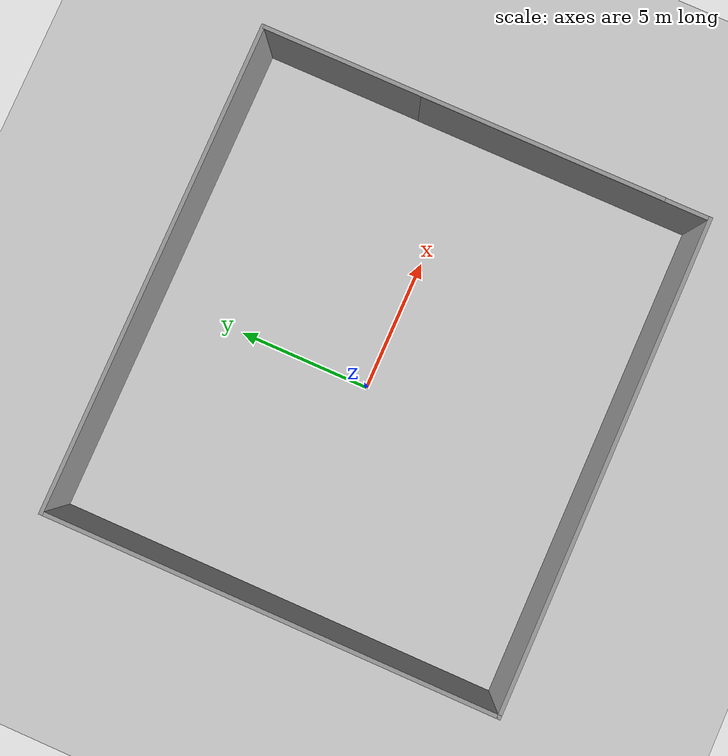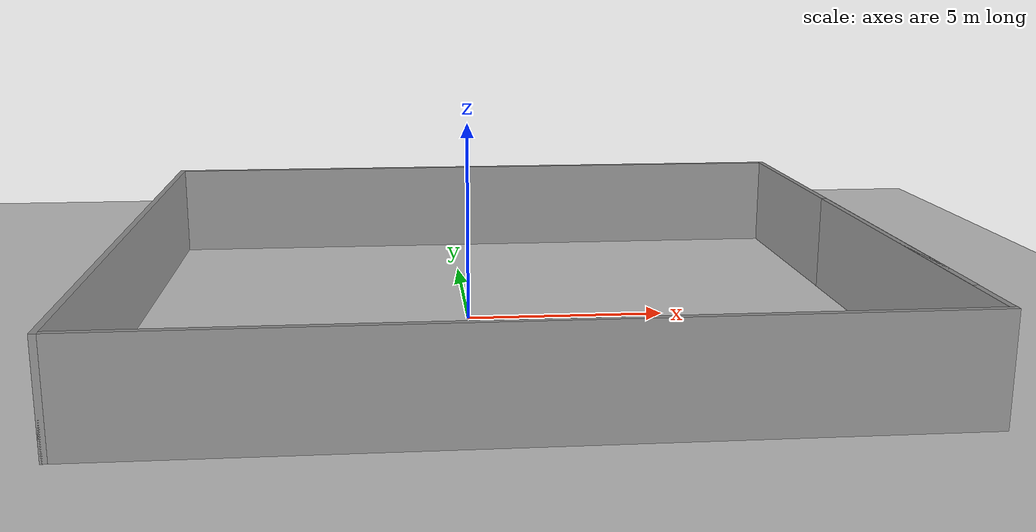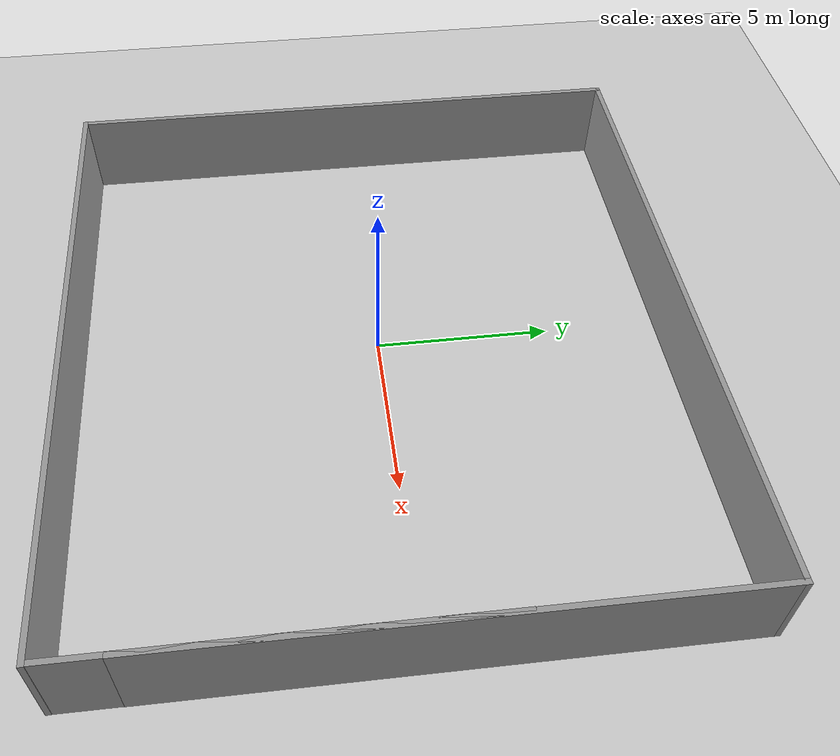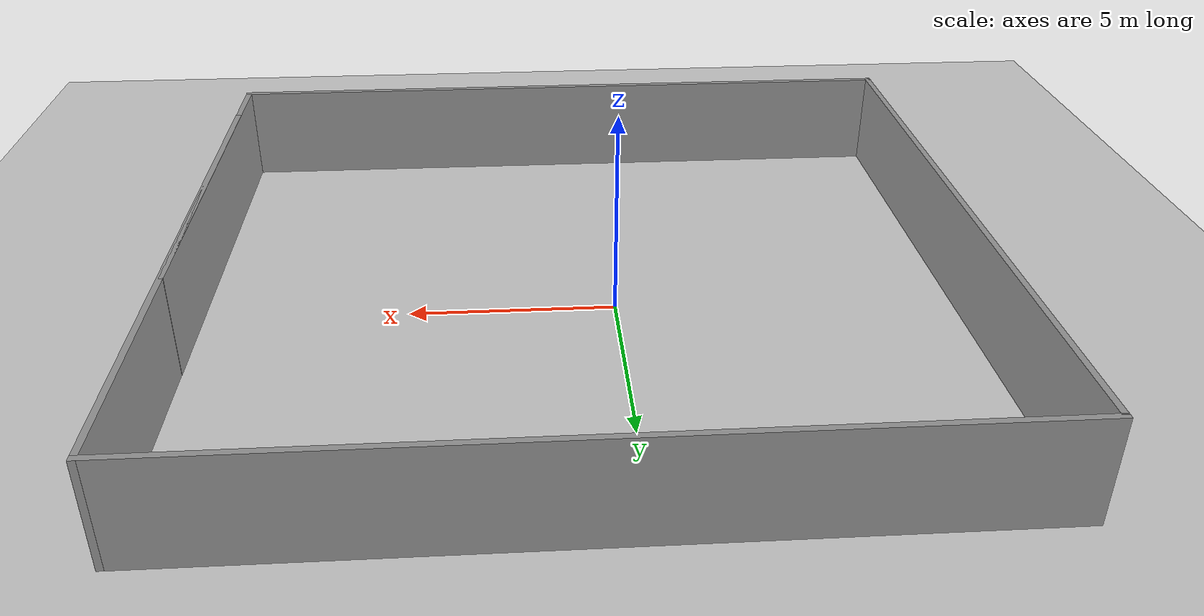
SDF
<sdf version="1.7">
 <world name="default">
  <light name="sun" type="directional">
   <pose>0 0 10 0 -0 0</pose>
   <diffuse>1 1 1 1</diffuse>
   <specular>0.6 0.6 0.6 1</specular>
   <attenuation>
    <range>1000</range>
    <constant>0.9</constant>
    <linear>0.01</linear>
    <quadratic>0.001</quadratic>
   </attenuation>
   <direction>-0.5 0.1 -0.9</direction>
   <spot><inner_angle>0</inner_angle><outer_angle>0</outer_angle><falloff>0</falloff></spot>
  </light>
  <model name="ground_plane">
   <static>1</static>
   <link name="link">
    <collision name="collision">
     <geometry><plane><normal>0 0 1</normal><size>100 100</size></plane></geometry>
     <surface><friction><ode><mu>100</mu><mu2>50</mu2></ode></friction></surface>
    </collision>
    <visual name="visual">
     <cast_shadows>0</cast_shadows>
     <geometry><plane><normal>0 0 1</normal><size>100 100</size></plane></geometry>
     <material>
      <script><uri>file://media/materials/scripts/gazebo.material</uri><name>Gazebo/Grey</name></script>
     </material>
    </visual>
   </link>
  </model>
  <gravity>0 0 -9.8</gravity>
  <magnetic_field>6e-06 2.3e-05 -4.2e-05</magnetic_field>
  <atmosphere type="adiabatic"/>
  <physics type="ode">
   <max_step_size>0.001</max_step_size>
   <real_time_factor>1</real_time_factor>
   <real_time_update_rate>1000</real_time_update_rate>
  </physics>
  <scene><ambient>0.8 0.8 0.8 1</ambient><background>0.4 0.4 0.4 1</background><shadows>1</shadows></scene>
  <audio><device>default</device></audio>
  <spherical_coordinates>
   <surface_model>EARTH_WGS84</surface_model>
   <latitude_deg>0</latitude_deg>
   <longitude_deg>0</longitude_deg>
   <elevation>0</elevation>
   <heading_deg>0</heading_deg>
  </spherical_coordinates>
  <model name="wall">
   <pose>0.8293 -0.115938 0 0 -0 0</pose>
   <link name="Wall_10">
    <collision name="Wall_10_Collision">
     <geometry><box><size>15.25 0.15 2.5</size></box></geometry>
     <pose>0 0 1.25 0 -0 0</pose>
    </collision>
    <visual name="Wall_10_Visual">
     <pose>0 0 1.25 0 -0 0</pose>
     <geometry><box><size>15.25 0.15 2.5</size></box></geometry>
     <material>
      <script><uri>file://media/materials/scripts/gazebo.material</uri><name>Gazebo/Grey</name></script>
      <ambient>1 1 1 1</ambient>
     </material>
     <meta><layer>0</layer></meta>
    </visual>
    <pose>9.175 0.875 0 0 -0 1.5708</pose>
   </link>
   <link name="Wall_11">
    <collision name="Wall_11_Collision">
     <geometry><box><size>18.5 0.15 2.5</size></box></geometry>
     <pose>0 0 1.25 0 -0 0</pose>
    </collision>
    <visual name="Wall_11_Visual">
     <pose>0 0 1.25 0 -0 0</pose>
     <geometry><box><size>18.5 0.15 2.5</size></box></geometry>
     <material>
      <script><uri>file://media/materials/scripts/gazebo.material</uri><name>Gazebo/Grey</name></script>
      <ambient>1 1 1 1</ambient>
     </material>
     <meta><layer>0</layer></meta>
    </visual>
    <pose>0 8.425 0 0 -0 3.14159</pose>
   </link>
   <link name="Wall_12">
    <collision name="Wall_12_Collision">
     <geometry><box><size>17 0.15 2.5</size></box></geometry>
     <pose>0 0 1.25 0 -0 0</pose>
    </collision>
    <visual name="Wall_12_Visual">
     <pose>0 0 1.25 0 -0 0</pose>
     <geometry><box><size>17 0.15 2.5</size></box></geometry>
     <material>
      <script><uri>file://media/materials/scripts/gazebo.material</uri><name>Gazebo/Grey</name></script>
      <ambient>1 1 1 1</ambient>
     </material>
     <meta><layer>0</layer></meta>
    </visual>
    <pose>-9.175 -0 0 0 -0 -1.5708</pose>
   </link>
   <link name="Wall_13">
    <collision name="Wall_13_Collision">
     <geometry><box><size>18.5 0.15 2.5</size></box></geometry>
     <pose>0 0 1.25 0 -0 0</pose>
    </collision>
    <visual name="Wall_13_Visual">
     <pose>0 0 1.25 0 -0 0</pose>
     <geometry><box><size>18.5 0.15 2.5</size></box></geometry>
     <material>
      <script><uri>file://media/materials/scripts/gazebo.material</uri><name>Gazebo/Grey</name></script>
      <ambient>1 1 1 1</ambient>
     </material>
     <meta><layer>0</layer></meta>
    </visual>
    <pose>0 -8.425 0 0 -0 0</pose>
   </link>
   <link name="Wall_6">
    <collision name="Wall_6_Collision">
     <geometry><box><size>10.75 0.15 2.5</size></box></geometry>
     <pose>0 0 1.25 0 -0 0</pose>
    </collision>
    <visual name="Wall_6_Visual">
     <pose>0 0 1.25 0 -0 0</pose>
     <geometry><box><size>10.75 0.15 2.5</size></box></geometry>
     <material>
      <script><uri>file://media/materials/scripts/gazebo.material</uri><name>Gazebo/Grey</name></script>
      <ambient>1 1 1 1</ambient>
     </material>
     <meta><layer>0</layer></meta>
    </visual>
    <pose>9.1676 -2.9866 0 0 -0 1.5708</pose>
   </link>
   <static>1</static>
  </model>
  <light name="user_directional_light_0" type="directional">
   <pose>-3.02371 4.89686 1 0 -0 0</pose>
   <diffuse>0.5 0.5 0.5 1</diffuse>
   <specular>0.1 0.1 0.1 1</specular>
   <direction>0.1 0.1 -0.9</direction>
   <attenuation>
    <range>20</range>
    <constant>0.5</constant>
    <linear>0.01</linear>
    <quadratic>0.001</quadratic>
   </attenuation>
  </light>
  <light name="user_directional_light_1" type="directional">
   <pose>-1.77412 0.429371 1 0 -0 0</pose>
   <diffuse>0.5 0.5 0.5 1</diffuse>
   <specular>0.1 0.1 0.1 1</specular>
   <direction>0.1 0.1 -0.9</direction>
   <attenuation>
    <range>20</range>
    <constant>0.5</constant>
    <linear>0.01</linear>
    <quadratic>0.001</quadratic>
   </attenuation>
  </light>
  <light name="user_directional_light_2" type="directional">
   <pose>-2.24855 2.3095 1 0 -0 0</pose>
   <diffuse>0.5 0.5 0.5 1</diffuse>
   <specular>0.1 0.1 0.1 1</specular>
   <direction>0.1 0.1 -0.9</direction>
   <attenuation>
    <range>20</range>
    <constant>0.5</constant>
    <linear>0.01</linear>
    <quadratic>0.001</quadratic>
   </attenuation>
  </light>
  <light name="user_directional_light_3" type="directional">
   <pose>-4.28421 2.85936 1 0 -0 0</pose>
   <diffuse>0.5 0.5 0.5 1</diffuse>
   <specular>0.1 0.1 0.1 1</specular>
   <direction>0.1 0.1 -0.9</direction>
   <attenuation>
    <range>20</range>
    <constant>0.5</constant>
    <linear>0.01</linear>
    <quadratic>0.001</quadratic>
   </attenuation>
  </light>
  <light name="user_directional_light_4" type="directional">
   <pose>2.90617 3.89778 1 0 -0 0</pose>
   <diffuse>0.5 0.5 0.5 1</diffuse>
   <specular>0.1 0.1 0.1 1</specular>
   <direction>0.1 0.1 -0.9</direction>
   <attenuation>
    <range>20</range>
    <constant>0.5</constant>
    <linear>0.01</linear>
    <quadratic>0.001</quadratic>
   </attenuation>
  </light>
  <light name="user_directional_light_5" type="directional">
   <pose>4.09071 -1.20951 1 0 -0 0</pose>
   <diffuse>0.5 0.5 0.5 1</diffuse>
   <specular>0.1 0.1 0.1 1</specular>
   <direction>0.1 0.1 -0.9</direction>
   <attenuation>
    <range>20</range>
    <constant>0.5</constant>
    <linear>0.01</linear>
    <quadratic>0.001</quadratic>
   </attenuation>
  </light>
  <light name="user_directional_light_6" type="directional">
   <pose>6.47907 -3.59105 1 0 -0 0</pose>
   <diffuse>0.5 0.5 0.5 1</diffuse>
   <specular>0.1 0.1 0.1 1</specular>
   <direction>0.1 0.1 -0.9</direction>
   <attenuation>
    <range>20</range>
    <constant>0.5</constant>
    <linear>0.01</linear>
    <quadratic>0.001</quadratic>
   </attenuation>
  </light>
 </world>
</sdf>
